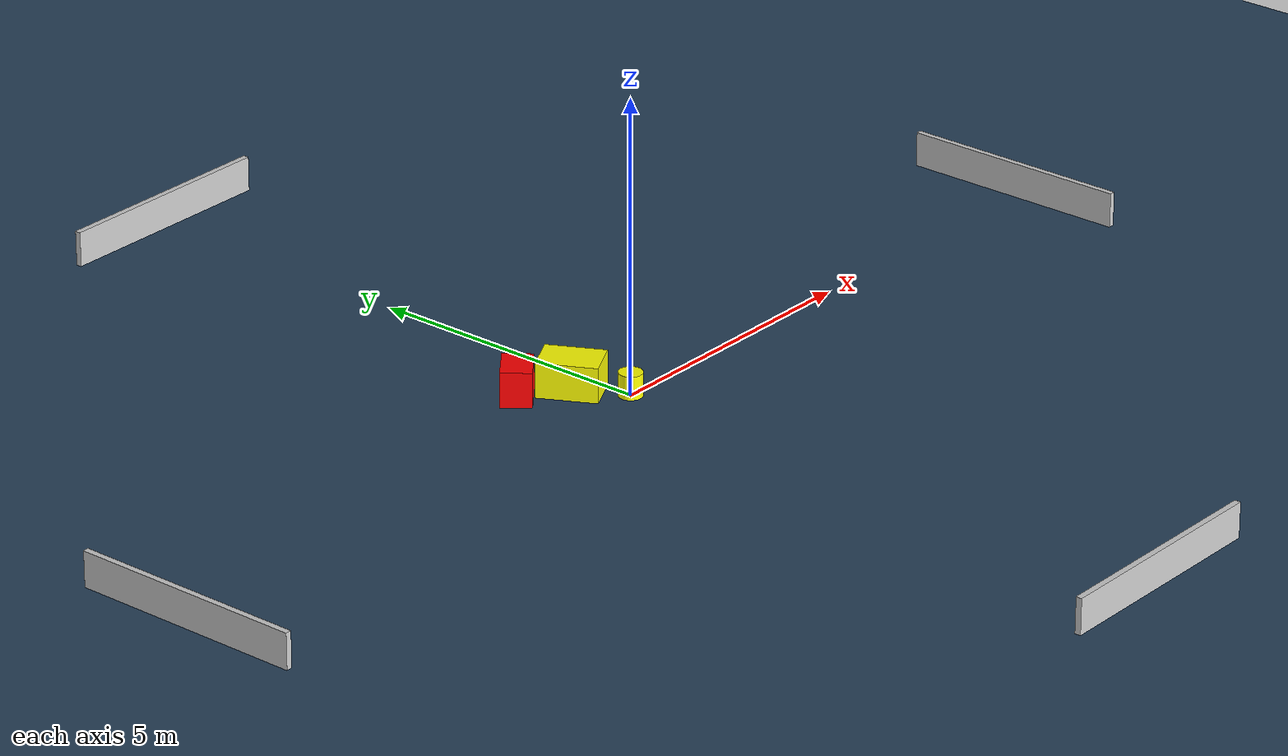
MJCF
<?xml version="1.0" ?>
<mujoco model="generated_environment">
  <option timestep="0.01" integrator="RK4" cone="elliptic"/>
  <default>
    <geom density="1"/>
  </default>
  <asset>
    <texture builtin="gradient" height="3072" name="skybox" rgb1="0.3 0.5 0.7" rgb2="0 0 0" type="skybox" width="512"/>
    <texture builtin="checker" height="300" name="groundplane" rgb1="0.2 0.3 0.4" rgb2="0.1 0.2 0.3" type="2d" width="300"/>
    <material name="groundplane" reflectance="0.2" texrepeat="5 5" texture="groundplane"/>
  </asset>
  <worldbody>
    <light dir="0 0 -1" directional="true" pos="0 0 1.5"/>
    <geom condim="3" friction="0.5 0.005 0.001" material="groundplane" name="floor" pos="0 0 0" size="0 0 0.05" type="plane"/>
    <body name="walls">
      <geom name="wall_1" condim="4" pos="-10.0 0.0 0.3" rgba="0.800000011920929 0.800000011920929 0.800000011920929 1.0" size="0.05 2.0 0.3" type="box"/>
      <geom name="wall_2" condim="4" pos="10.0 0.0 0.3" rgba="0.800000011920929 0.800000011920929 0.800000011920929 1.0" size="0.05 2.0 0.3" type="box"/>
      <geom name="wall_3" condim="4" pos="0.0 -10.0 0.3" rgba="0.800000011920929 0.800000011920929 0.800000011920929 1.0" size="2.0 0.05 0.3" type="box"/>
      <geom name="wall_4" condim="4" pos="0.0 10.0 0.3" rgba="0.800000011920929 0.800000011920929 0.800000011920929 1.0" size="2.0 0.05 0.3" type="box"/>
    </body>
    <body name="robot">
      <joint name="joint_x" type="slide" pos="0 0 0" axis="1 0 0"/>
      <joint name="joint_y" type="slide" pos="0 0 0" axis="0 1 0"/>
      <geom name="robot" type="cylinder" pos="0.0 0.0 0.2" size="0.2 0.2 0.0" mass="5.0" friction="1.0 0.005 0.0001" condim="4" rgba="1.0 1.0 0.0 1.0"/>
    </body>
    <body name="obstacle_1_movable">
      <geom name="obstacle_1_movable" condim="4" pos="-0.4819752305268228 0.7970233741374453 0.3" euler="0 0 207.6802663297338" friction="0.0 0.005 0.001" rgba="1.0 1.0 0.0 1.0" size="0.3504204758886348 0.5015521888592591 0.3" type="box" mass="0.1"/>
      <joint type="free"/>
    </body>
    <body name="obstacle_2_static">
      <geom name="obstacle_2_static" condim="4" pos="-1.2107163928791078 1.2858430020254756 0.3" euler="0 0 38.02254003089629" friction="0.0 0.005 0.001" rgba="1.0 0.0 0.0 1.0" size="0.35745082336390727 0.25463427553474005 0.3" type="box"/>
    </body>
  </worldbody>
  <actuator>
    <motor name="actuator_x" joint="joint_x" gear="1" ctrlrange="-1 1"/>
    <motor name="actuator_y" joint="joint_y" gear="1" ctrlrange="-1 1"/>
  </actuator>
</mujoco>
